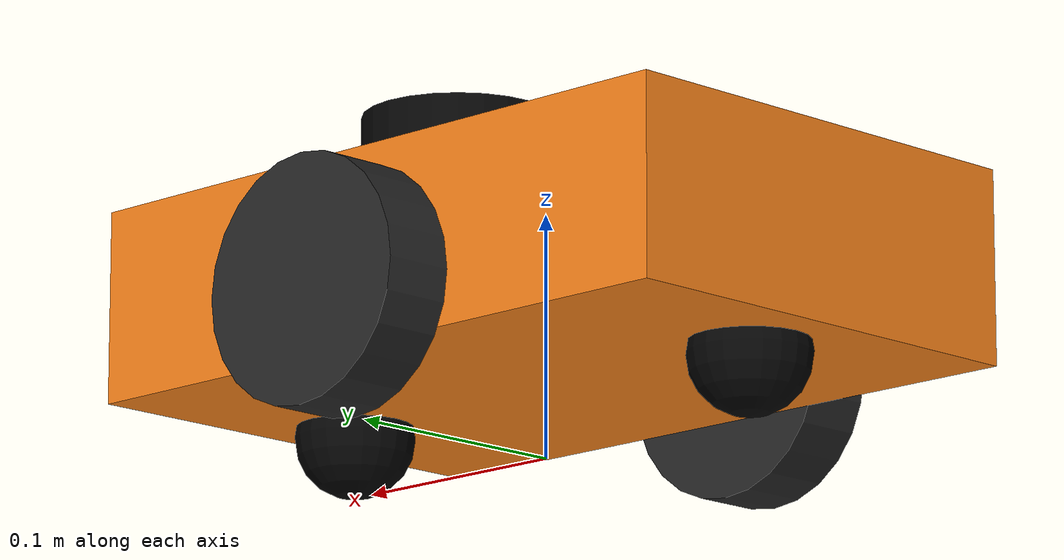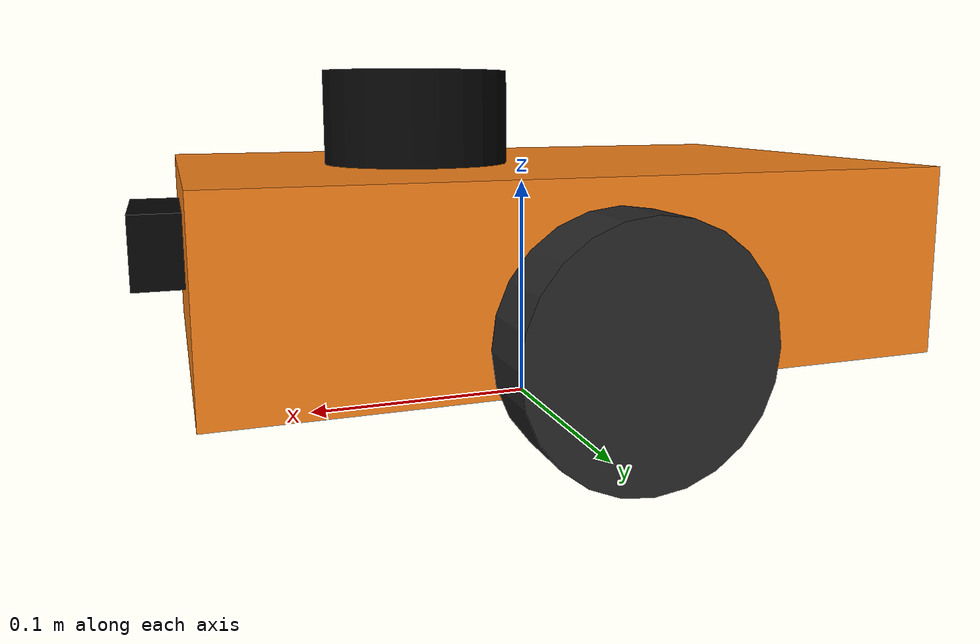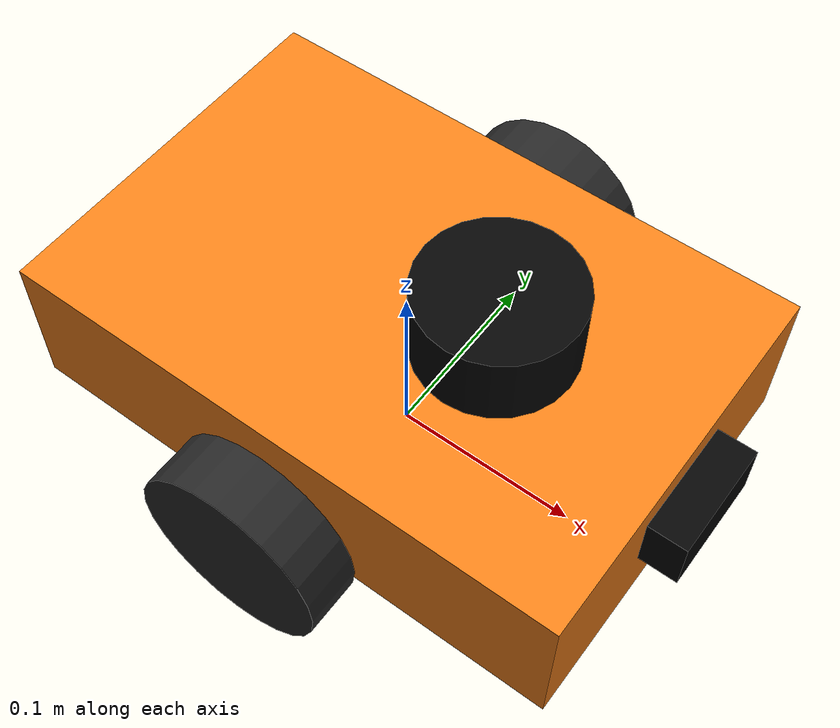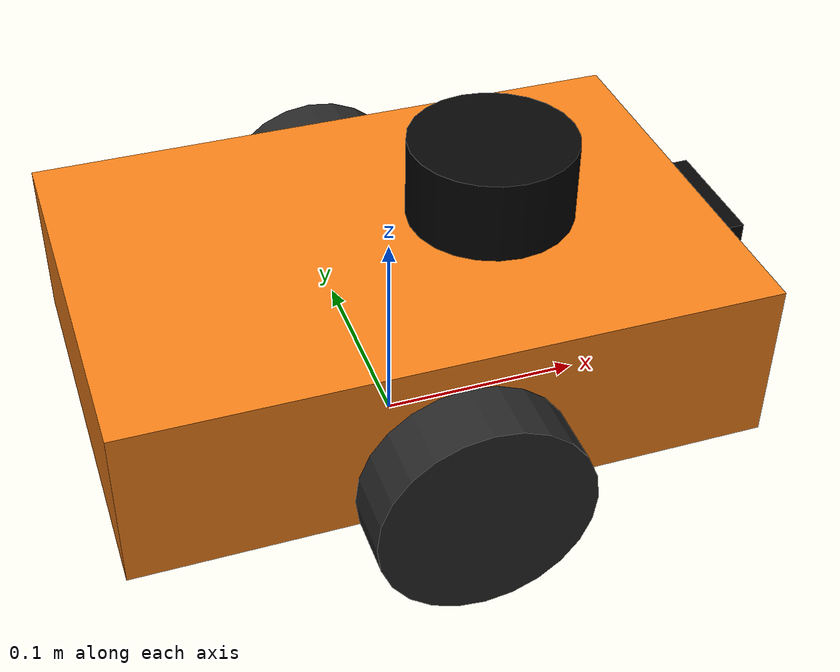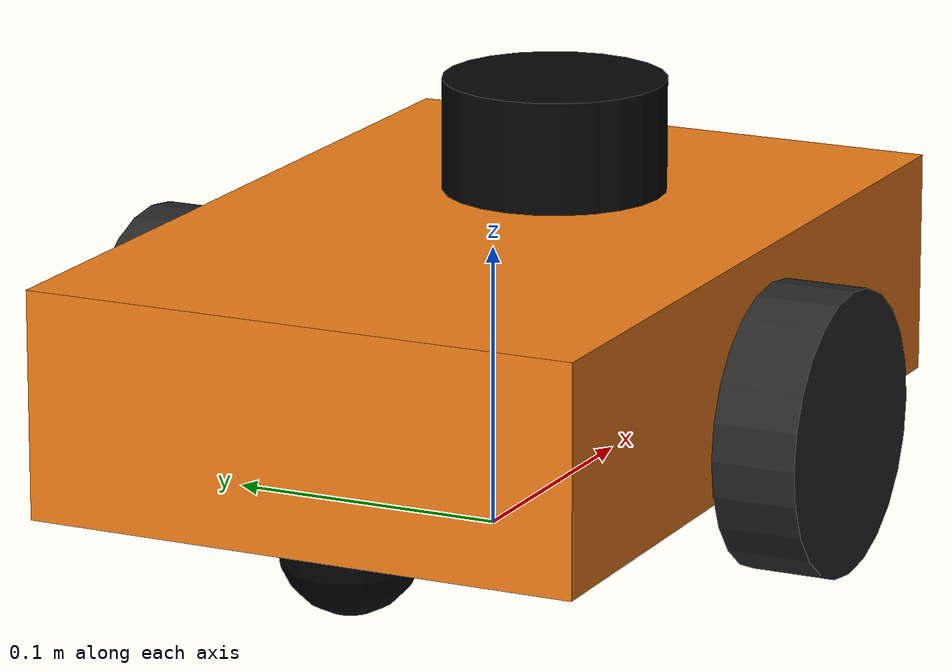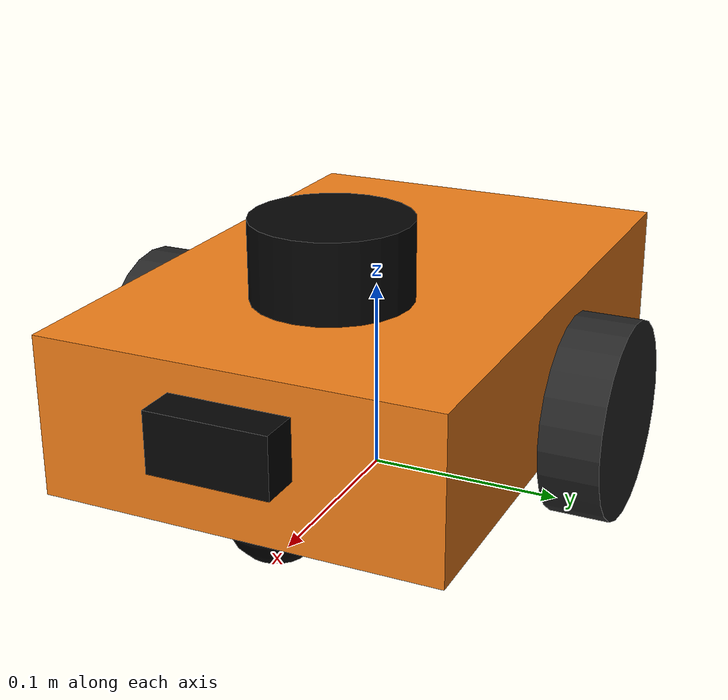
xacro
<?xml version="1.0"?>
<robot xmlns:xacro="http://www.ros.org/wiki/xacro" name="amr">

  <!-- ===== Dimensions (metres / kilograms) ===== -->
  <xacro:property name="body_l" value="0.30"/>
  <xacro:property name="body_w" value="0.20"/>
  <xacro:property name="body_h" value="0.08"/>
  <xacro:property name="body_z" value="0.02"/>
  <xacro:property name="body_m" value="3.0"/>
  <xacro:property name="wheel_r" value="0.05"/>
  <xacro:property name="wheel_w" value="0.03"/>
  <xacro:property name="wheel_m" value="0.2"/>
  <xacro:property name="wheel_y" value="0.12"/>
  <xacro:property name="caster_r" value="0.025"/>
  <xacro:property name="caster_m" value="0.05"/>

  <!-- ===== Materials ===== -->
  <material name="body_orange"><color rgba="0.95 0.50 0.10 1.0"/></material>
  <material name="dark_grey"><color rgba="0.15 0.15 0.15 1.0"/></material>
  <material name="black"><color rgba="0.02 0.02 0.02 1.0"/></material>

  <!-- ===== Inertia helpers ===== -->
  <xacro:macro name="box_inertia" params="m x y z">
    <inertia ixx="${m*(y*y+z*z)/12.0}" ixy="0" ixz="0"
             iyy="${m*(x*x+z*z)/12.0}" iyz="0"
             izz="${m*(x*x+y*y)/12.0}"/>
  </xacro:macro>

  <!-- cylinder whose symmetry axis is the link y axis (wheel) -->
  <xacro:macro name="wheel_inertia" params="m r w">
    <inertia ixx="${m*(3*r*r+w*w)/12.0}" ixy="0" ixz="0"
             iyy="${m*r*r/2.0}" iyz="0"
             izz="${m*(3*r*r+w*w)/12.0}"/>
  </xacro:macro>

  <xacro:macro name="sphere_inertia" params="m r">
    <inertia ixx="${2.0*m*r*r/5.0}" ixy="0" ixz="0"
             iyy="${2.0*m*r*r/5.0}" iyz="0"
             izz="${2.0*m*r*r/5.0}"/>
  </xacro:macro>

  <!-- ===== Chassis ===== -->
  <link name="base_footprint"/>

  <link name="base_link">
    <visual>
      <origin xyz="0 0 ${body_z}"/>
      <geometry><box size="${body_l} ${body_w} ${body_h}"/></geometry>
      <material name="body_orange"/>
    </visual>
    <collision>
      <origin xyz="0 0 ${body_z}"/>
      <geometry><box size="${body_l} ${body_w} ${body_h}"/></geometry>
    </collision>
    <inertial>
      <origin xyz="0 0 ${body_z}"/>
      <mass value="${body_m}"/>
      <xacro:box_inertia m="${body_m}" x="${body_l}" y="${body_w}" z="${body_h}"/>
    </inertial>
  </link>

  <joint name="base_joint" type="fixed">
    <parent link="base_footprint"/>
    <child link="base_link"/>
    <origin xyz="0 0 ${wheel_r}" rpy="0 0 0"/>
  </joint>

  <!-- ===== Drive wheels ===== -->
  <xacro:macro name="wheel" params="name y">
    <link name="${name}_wheel">
      <visual>
        <origin xyz="0 0 0" rpy="${pi/2} 0 0"/>
        <geometry><cylinder radius="${wheel_r}" length="${wheel_w}"/></geometry>
        <material name="dark_grey"/>
      </visual>
      <collision>
        <origin xyz="0 0 0" rpy="${pi/2} 0 0"/>
        <geometry><cylinder radius="${wheel_r}" length="${wheel_w}"/></geometry>
      </collision>
      <inertial>
        <mass value="${wheel_m}"/>
        <xacro:wheel_inertia m="${wheel_m}" r="${wheel_r}" w="${wheel_w}"/>
      </inertial>
    </link>
    <joint name="${name}_wheel_joint" type="continuous">
      <parent link="base_link"/>
      <child link="${name}_wheel"/>
      <origin xyz="0 ${y} 0" rpy="0 0 0"/>
      <axis xyz="0 1 0"/>
    </joint>
    <gazebo reference="${name}_wheel">
      <mu1>1.0</mu1>
      <mu2>1.0</mu2>
    </gazebo>
  </xacro:macro>

  <xacro:wheel name="left" y="${wheel_y}"/>
  <xacro:wheel name="right" y="${-wheel_y}"/>

  <!-- ===== Frictionless casters (front and rear) ===== -->
  <xacro:macro name="caster" params="name x">
    <link name="${name}_caster">
      <visual>
        <geometry><sphere radius="${caster_r}"/></geometry>
        <material name="black"/>
      </visual>
      <collision>
        <geometry><sphere radius="${caster_r}"/></geometry>
      </collision>
      <inertial>
        <mass value="${caster_m}"/>
        <xacro:sphere_inertia m="${caster_m}" r="${caster_r}"/>
      </inertial>
    </link>
    <joint name="${name}_caster_joint" type="fixed">
      <parent link="base_link"/>
      <child link="${name}_caster"/>
      <origin xyz="${x} 0 ${-(wheel_r - caster_r)}" rpy="0 0 0"/>
    </joint>
    <gazebo reference="${name}_caster">
      <mu1>0.0</mu1>
      <mu2>0.0</mu2>
    </gazebo>
  </xacro:macro>

  <xacro:caster name="front" x="0.11"/>
  <xacro:caster name="rear" x="-0.11"/>

  <!-- ===== 2D LiDAR ===== -->
  <link name="lidar_link">
    <visual>
      <geometry><cylinder radius="0.04" length="0.04"/></geometry>
      <material name="black"/>
    </visual>
    <collision>
      <geometry><cylinder radius="0.04" length="0.04"/></geometry>
    </collision>
    <inertial>
      <mass value="0.1"/>
      <inertia ixx="0.0001" ixy="0" ixz="0" iyy="0.0001" iyz="0" izz="0.0001"/>
    </inertial>
  </link>
  <joint name="lidar_joint" type="fixed">
    <parent link="base_link"/>
    <child link="lidar_link"/>
    <origin xyz="0.05 0 0.08" rpy="0 0 0"/>
  </joint>

  <gazebo reference="lidar_link">
    <sensor name="lidar" type="gpu_lidar">
      <topic>scan</topic>
      <gz_frame_id>lidar_link</gz_frame_id>
      <update_rate>10</update_rate>
      <always_on>true</always_on>
      <visualize>false</visualize>
      <lidar>
        <scan>
          <horizontal>
            <samples>360</samples>
            <resolution>1</resolution>
            <min_angle>-3.14159</min_angle>
            <max_angle>3.14159</max_angle>
          </horizontal>
        </scan>
        <range>
          <min>0.12</min>
          <max>8.0</max>
          <resolution>0.01</resolution>
        </range>
        <noise>
          <type>gaussian</type>
          <mean>0.0</mean>
          <stddev>0.01</stddev>
        </noise>
      </lidar>
    </sensor>
  </gazebo>

  <!-- ===== RGB camera (x forward) + optical frame (z forward) ===== -->
  <link name="camera_link">
    <visual>
      <geometry><box size="0.02 0.06 0.03"/></geometry>
      <material name="black"/>
    </visual>
    <collision>
      <geometry><box size="0.02 0.06 0.03"/></geometry>
    </collision>
    <inertial>
      <mass value="0.05"/>
      <xacro:box_inertia m="0.05" x="0.02" y="0.06" z="0.03"/>
    </inertial>
  </link>
  <joint name="camera_joint" type="fixed">
    <parent link="base_link"/>
    <child link="camera_link"/>
    <origin xyz="0.16 0 0.03" rpy="0 0 0"/>
  </joint>

  <link name="camera_optical_link"/>
  <joint name="camera_optical_joint" type="fixed">
    <parent link="camera_link"/>
    <child link="camera_optical_link"/>
    <origin xyz="0 0 0" rpy="${-pi/2} 0 ${-pi/2}"/>
  </joint>

  <gazebo reference="camera_link">
    <sensor name="camera" type="camera">
      <topic>camera/image_raw</topic>
      <gz_frame_id>camera_optical_link</gz_frame_id>
      <update_rate>10</update_rate>
      <always_on>true</always_on>
      <visualize>false</visualize>
      <camera>
        <horizontal_fov>1.089</horizontal_fov>
        <image>
          <width>320</width>
          <height>240</height>
          <format>R8G8B8</format>
        </image>
        <clip>
          <near>0.05</near>
          <far>10.0</far>
        </clip>
      </camera>
    </sensor>
  </gazebo>

  <!-- ===== IMU ===== -->
  <link name="imu_link">
    <inertial>
      <mass value="0.01"/>
      <inertia ixx="0.00001" ixy="0" ixz="0" iyy="0.00001" iyz="0" izz="0.00001"/>
    </inertial>
  </link>
  <joint name="imu_joint" type="fixed">
    <parent link="base_link"/>
    <child link="imu_link"/>
    <origin xyz="0 0 ${body_z}" rpy="0 0 0"/>
  </joint>

  <gazebo reference="imu_link">
    <sensor name="imu" type="imu">
      <topic>imu</topic>
      <gz_frame_id>imu_link</gz_frame_id>
      <update_rate>50</update_rate>
      <always_on>true</always_on>
      <visualize>false</visualize>
    </sensor>
  </gazebo>

  <!-- ===== Gazebo model plugins ===== -->
  <gazebo>
    <plugin filename="gz-sim-diff-drive-system" name="gz::sim::systems::DiffDrive">
      <left_joint>left_wheel_joint</left_joint>
      <right_joint>right_wheel_joint</right_joint>
      <wheel_separation>${2*wheel_y}</wheel_separation>
      <wheel_radius>${wheel_r}</wheel_radius>
      <topic>cmd_vel</topic>
      <odom_topic>odom</odom_topic>
      <tf_topic>/tf</tf_topic>
      <frame_id>odom</frame_id>
      <child_frame_id>base_footprint</child_frame_id>
      <odom_publish_frequency>30</odom_publish_frequency>
    </plugin>

    <plugin filename="gz-sim-joint-state-publisher-system"
            name="gz::sim::systems::JointStatePublisher">
      <topic>joint_states</topic>
    </plugin>
  </gazebo>

</robot>
